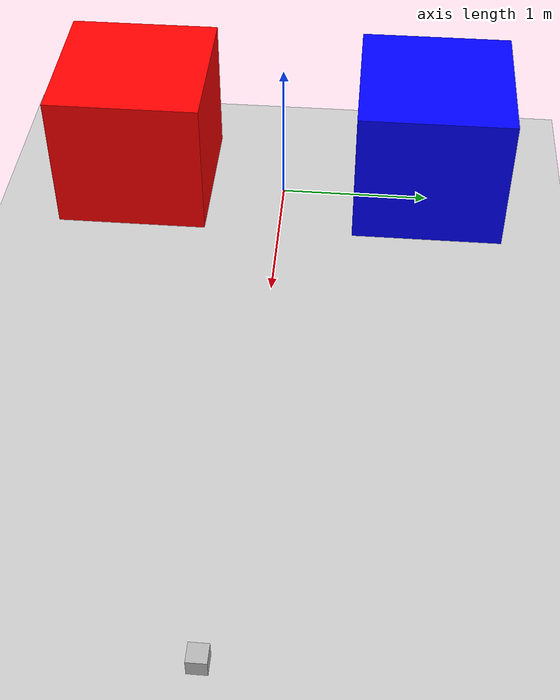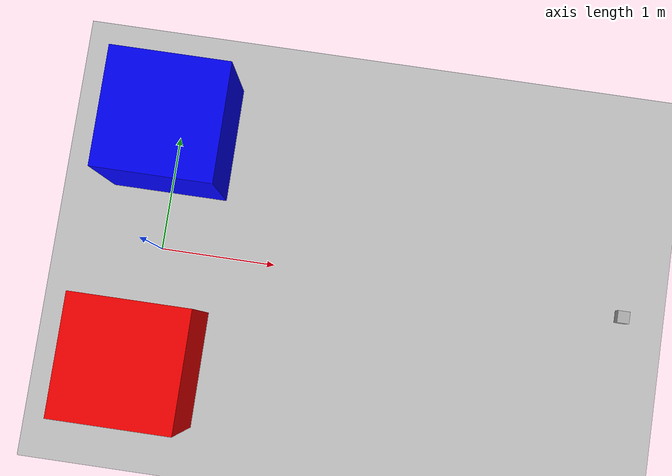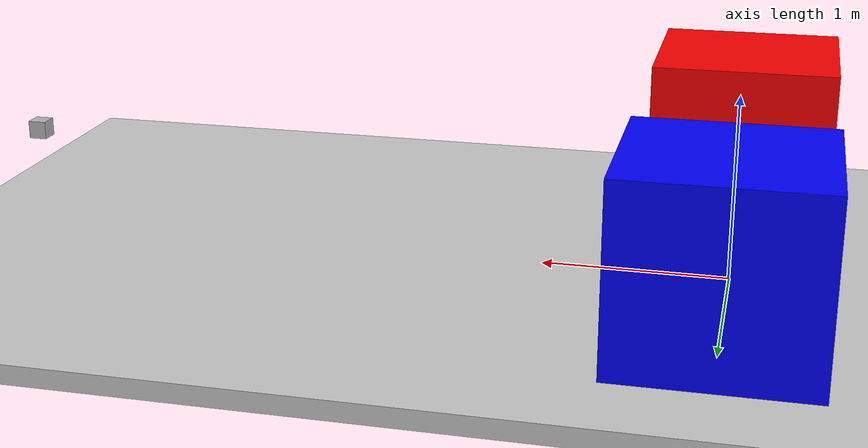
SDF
<?xml version="1.0" ?>
<sdf version="1.6">
  <world name="gpu_lidar_retro_values_sensor">
    <physics name="1ms" type="ignored">
      <max_step_size>0.001</max_step_size>
      <real_time_factor>1.0</real_time_factor>
    </physics>
    <plugin
      filename="gz-sim-physics-system"
      name="gz::sim::systems::Physics">
    </plugin>
    <plugin
      filename="gz-sim-sensors-system"
      name="gz::sim::systems::Sensors">
      <render_engine>ogre2</render_engine>
    </plugin>
    <plugin
      filename="gz-sim-scene-broadcaster-system"
      name="gz::sim::systems::SceneBroadcaster">
    </plugin>

    <light type="directional" name="sun">
      <cast_shadows>true</cast_shadows>
      <pose>0 0 10 0 0 0</pose>
      <diffuse>0.8 0.8 0.8 1</diffuse>
      <specular>0.2 0.2 0.2 1</specular>
      <attenuation>
        <range>1000</range>
        <constant>0.9</constant>
        <linear>0.01</linear>
        <quadratic>0.001</quadratic>
      </attenuation>
      <direction>-0.5 0.1 -0.9</direction>
    </light>

    <model name="ground_plane">
      <static>true</static>
      <link name="link">
        <collision name="collision">
          <geometry>
            <box>
              <size>20 20 0.1</size>
            </box>
          </geometry>
        </collision>
        <visual name="visual">
          <geometry>
            <box>
              <size>20 20 0.1</size>
            </box>
          </geometry>
          <material>
            <ambient>0.8 0.8 0.8 1</ambient>
            <diffuse>0.8 0.8 0.8 1</diffuse>
            <specular>0.8 0.8 0.8 1</specular>
          </material>
        </visual>
      </link>
    </model>

    <model name="box_no_retro_values">
      <pose>0 -1 0.5 0 0 0</pose>
      <link name="box_link">
        <inertial>
          <inertia>
            <ixx>1</ixx>
            <ixy>0</ixy>
            <ixz>0</ixz>
            <iyy>1</iyy>
            <iyz>0</iyz>
            <izz>1</izz>
          </inertia>
          <mass>1.0</mass>
        </inertial>
        <collision name="box_collision">
          <geometry>
            <box>
              <size>1 1 1</size>
            </box>
          </geometry>
        </collision>

        <visual name="box_visual">
          <geometry>
            <box>
              <size>1 1 1</size>
            </box>
          </geometry>
          <material>
            <ambient>1 0 0 1</ambient>
            <diffuse>1 0 0 1</diffuse>
            <specular>1 0 0 1</specular>
          </material>
        </visual>
      </link>
    </model>

    <model name="box_retro_500">
      <pose>0 1 0.5 0 0 0</pose>
      <link name="box_link">
        <inertial>
          <inertia>
            <ixx>1</ixx>
            <ixy>0</ixy>
            <ixz>0</ixz>
            <iyy>1</iyy>
            <iyz>0</iyz>
            <izz>1</izz>
          </inertia>
          <mass>1.0</mass>
        </inertial>
        <collision name="box_collision">
          <geometry>
            <box>
              <size>1 1 1</size>
            </box>
          </geometry>
        </collision>

        <visual name="box_visual">
          <laser_retro>500</laser_retro>
          <geometry>
            <box>
              <size>1 1 1</size>
            </box>
          </geometry>
          <material>
            <ambient>0 0 1 1</ambient>
            <diffuse>0 0 1 1</diffuse>
            <specular>0 0 1 1</specular>
          </material>
        </visual>
      </link>
    </model>

    <model name="model_with_lidar">
      <pose>4 0 0.5 0 0.0 3.14</pose>
      <link name="link">
        <pose>0.05 0.05 0.05 0 0 0</pose>
        <inertial>
          <mass>0.1</mass>
          <inertia>
            <ixx>0.000166667</ixx>
            <iyy>0.000166667</iyy>
            <izz>0.000166667</izz>
          </inertia>
        </inertial>
        <collision name="collision">
          <geometry>
            <box>
              <size>0.1 0.1 0.1</size>
            </box>
          </geometry>
        </collision>
        <visual name="visual">
          <geometry>
            <box>
              <size>0.1 0.1 0.1</size>
            </box>
          </geometry>
        </visual>

        <sensor name='gpu_lidar' type='gpu_lidar'>
          <topic>lidar</topic>
          <update_rate>10</update_rate>
          <lidar>
            <scan>
              <horizontal>
                <samples>640</samples>
                <resolution>1</resolution>
                <min_angle>-1.396263</min_angle>
                <max_angle>1.396263</max_angle>
              </horizontal>
              <vertical>
                <samples>16</samples>
                <resolution>1</resolution>
                <min_angle>-0.261799</min_angle>
                <max_angle>0.261799</max_angle>
              </vertical>
            </scan>
            <range>
              <min>0.08</min>
              <max>10.0</max>
              <resolution>0.01</resolution>
            </range>
          </lidar>
          <alwaysOn>1</alwaysOn>
          <visualize>true</visualize>
        </sensor>
      </link>

      <static>true</static>
    </model>

  </world>
</sdf>
